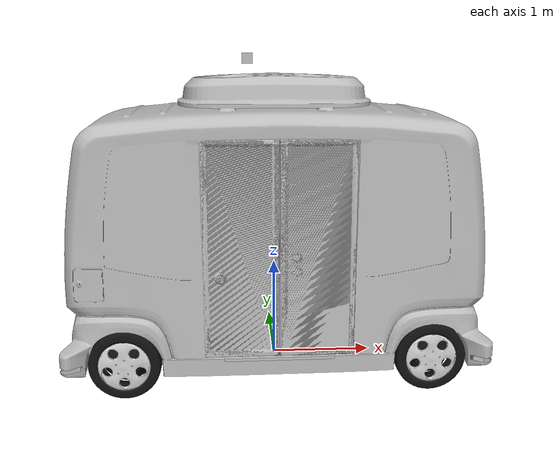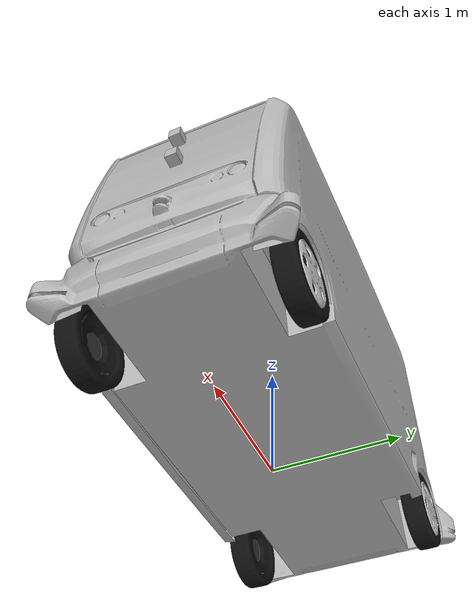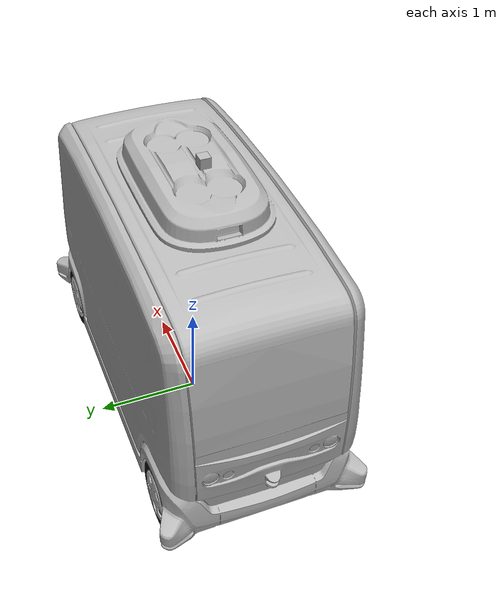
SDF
<?xml version="1.0"?>
<sdf version="1.6">

    <model name='gen0_model'>
        <!-- Define robot links -->
        <link name="base_link">
            <pose>0 0 0 0 0 0</pose>
            <visual name='visual'>
                <pose>0 0 0 0 0 -1.57079633</pose>
                <geometry>
                    <mesh>
                        <uri>../meshes/gen0_colored.dae</uri>
                        <scale>1 1 1</scale>
                    </mesh>
                </geometry>
            </visual>
            <collision name='collision_base_link'>
                <pose>0 0 0 0 0 -1.57079633</pose>
                <geometry>
                    <mesh>
                        <uri>../meshes/gen0_colored.dae</uri>
                        <scale>1 1 1</scale>
                    </mesh>
                </geometry>
            </collision>
        </link>

        <link name="main_mass">
            <pose>0 0 0 0 0 0</pose>
            <inertial>
                <mass>1703.239</mass> <!-- Mass value is incorrect as the intertias are wrong-->
                <inertia>
                    <ixx>347.195805</ixx>
                    <ixy>-11.4914985</ixy>
                    <ixz>18.5070628</ixz>
                    <iyy>2330.10026</iyy>
                    <iyz>3.97814264</iyz>
                    <izz>2529.41827</izz>
                </inertia>
            </inertial>
        </link>

        <link name="right_door_link_empty">
            <pose>0 0 0 0 0 0 </pose>
            <inertial>
                <mass>5.00</mass>
                <inertia>
                    <ixx>0.1</ixx>
                    <ixy>0.0</ixy>
                    <ixz>0.0</ixz>
                    <iyy>0.1</iyy>
                    <iyz>0.0</iyz>
                    <izz>0.1</izz>
                </inertia>
            </inertial>
        </link>

         <link name="right_door_link">
            <pose>0 0 0 0 0 -1.57079633</pose>
            <inertial>
                <mass>5.00</mass>
                <inertia>
                    <ixx>0.1</ixx>
                    <ixy>0.0</ixy>
                    <ixz>0.0</ixz>
                    <iyy>0.1</iyy>
                    <iyz>0.0</iyz>
                    <izz>0.1</izz>
                </inertia>
            </inertial>
            <visual name='right_door_visual'>
                <pose>0 0 0 0 0 0</pose>
                <geometry>
                    <mesh>
                        <uri>../meshes/gen0_right_door.dae</uri>
                        <scale>1 1 1</scale>
                    </mesh>
                </geometry>
            </visual>
        </link>

        <joint name="right_door_slide_forward" type="prismatic">
            <parent>base_link</parent>
            <child>right_door_link_empty</child>
            <axis>
                <xyz>0 -1 0</xyz>
                <limit>
                    <lower>0.0</lower>
                    <upper>0.1</upper>
                    <velocity>75.0</velocity>
                    <effort>500.0</effort>
                </limit>
                <dynamics>
                    <damping>5.0</damping>
                </dynamics>
            </axis>
        </joint>

        <joint name="right_door_slide_sideways" type="prismatic">
            <parent>right_door_link_empty</parent>
            <child>right_door_link</child>
            <axis>
                <xyz>0 1 0</xyz>
                <limit>
                    <lower>0.0</lower>
                    <upper>0.5</upper>
                    <velocity>10.5</velocity>
                    <effort>500.0</effort>
                </limit>
                <dynamics>
                    <damping>5.0</damping>
                </dynamics>
            </axis>
        </joint>

        <link name="left_door_link_empty">
            <pose>0 0 0 0 0 0 </pose>
            <inertial>
                <mass>5.00</mass>
                <inertia>
                    <ixx>0.1</ixx>
                    <ixy>0.0</ixy>
                    <ixz>0.0</ixz>
                    <iyy>0.1</iyy>
                    <iyz>0.0</iyz>
                    <izz>0.1</izz>
                </inertia>
            </inertial>
        </link>

         <link name="left_door_link">
            <pose>0 0 0 0 0 -1.57079633</pose>
            <inertial>
                <mass>5.00</mass>
                <inertia>
                    <ixx>0.1</ixx>
                    <ixy>0.0</ixy>
                    <ixz>0.0</ixz>
                    <iyy>0.1</iyy>
                    <iyz>0.0</iyz>
                    <izz>0.1</izz>
                </inertia>
            </inertial>
            <visual name='left_door_visual'>
                <pose>0 0 0 0 0 0</pose>
                <geometry>
                    <mesh>
                        <uri>../meshes/gen0_left_door.dae</uri>
                        <scale>1 1 1</scale>
                    </mesh>
                </geometry>
            </visual>
        </link>

        <joint name="left_door_slide_forward" type="prismatic">
            <parent>base_link</parent>
            <child>left_door_link_empty</child>
            <axis>
                <xyz>0 -1 0</xyz>
                <limit>
                    <lower>0.0</lower>
                    <upper>0.1</upper>
                    <velocity>50.5</velocity>
                    <effort>500.0</effort>
                </limit>
                <dynamics>
                    <damping>5.0</damping>
                </dynamics>
            </axis>
        </joint>

        <joint name="left_door_slide_sideways" type="prismatic">
            <parent>left_door_link_empty</parent>
            <child>left_door_link</child>
            <axis>
                <xyz>0 -1 0</xyz>
                <limit>
                    <lower>0.0</lower>
                    <upper>0.5</upper>
                    <velocity>10.5</velocity>
                    <effort>500.0</effort>
                </limit>
                <dynamics>
                    <damping>5.0</damping>
                </dynamics>
            </axis>
        </joint>

        <link name="ramp_link_empty">
            <pose>0 0 0 0 0 0 </pose>
            <inertial>
                <mass>5.00</mass>
                <inertia>
                    <ixx>0.1</ixx>
                    <ixy>0.0</ixy>
                    <ixz>0.0</ixz>
                    <iyy>0.1</iyy>
                    <iyz>0.0</iyz>
                    <izz>0.1</izz>
                </inertia>
            </inertial>
        </link>

        <link name="ramp_link">
            <pose>0 0.58 0.40 0 0 -1.57079633</pose>
            <inertial>
                <mass>5.00</mass>
                <inertia>
                    <ixx>0.1</ixx>
                    <ixy>0.0</ixy>
                    <ixz>0.0</ixz>
                    <iyy>0.1</iyy>
                    <iyz>0.0</iyz>
                    <izz>0.1</izz>
                </inertia>
            </inertial>
            <visual name='ramp_visual'>
                <pose>0.58 0 -0.40 0 0 0</pose>
                <geometry>
                    <mesh>
                        <uri>../meshes/gen0_ramp.dae</uri>
                        <scale>1 1 1</scale>
                    </mesh>
                </geometry>
            </visual>
        </link>

        <joint name="ramp_slide_forward" type="prismatic">
            <parent>base_link</parent>
            <child>ramp_link_empty</child>
            <axis>
                <xyz>0 -1 0</xyz>
                <limit>
                    <lower>0.0</lower>
                    <upper>1.48</upper>
                    <velocity>0.5</velocity>
                    <effort>500.0</effort>
                </limit>
                <dynamics>
                    <damping>25.0</damping>
                    <friction>0.0</friction>
                </dynamics>
            </axis>
        </joint>

        <joint name="ramp_slide_rotate" type="revolute">
            <parent>ramp_link_empty</parent>
            <child>ramp_link</child>
            <axis>
                <xyz>0 -1 0</xyz>
                <limit>
                    <lower>-0.245</lower>
                    <upper>0.0</upper>
                    <velocity>10.5</velocity>
                    <effort>500.0</effort>
                </limit>
                <dynamics>
                    <damping>15.0</damping>
                    <friction>0.0</friction>
                </dynamics>
            </axis>
        </joint>

        <link name="back_right_steering_link">
            <pose>-1.4 -0.7925 0.33 0 0 0</pose>
            <inertial>
                <mass>50.00</mass>
                <inertia>
                    <ixx>0.25</ixx>
                    <ixy>0</ixy>
                    <ixz>0</ixz>
                    <iyy>0.1354</iyy>
                    <iyz>0</iyz>
                    <izz>0.1354</izz>
                </inertia>
            </inertial>
            <visual name='visual_back_right_steering'>
                <pose>0 0 0 1.570796 0 0</pose>
                <geometry>
                    <cylinder>
                        <length>0.05</length>
                        <radius>0.1</radius>
                    </cylinder>
                </geometry>
                <material>
                    <ambient>0.2 0.2 0.2 1</ambient>
                    <diffuse>0.2 0.2 0.2 1</diffuse>
                    <specular>0.2 0.2 0.2 1</specular>
                </material>
            </visual>
            <collision name='collision_back_right_steering'>
                <pose>0 0 0 1.570796 0 0</pose>
                <geometry>
                    <cylinder>
                        <length>0.05</length>
                        <radius>0.1</radius>
                    </cylinder>
                </geometry>
            </collision>
        </link>

        <link name="back_right_wheel_link">
            <pose>-1.4 -0.7925 0.33 0 0 -1.570796</pose>
            <inertial>
                <mass>20.00</mass>
                <inertia>
                    <ixx>1.089</ixx>
                    <ixy>0</ixy>
                    <ixz>0</ixz>
                    <iyy>0.5985</iyy>
                    <iyz>0</iyz>
                    <izz>0.5985</izz>
                </inertia>
            </inertial>
            <visual name='visual_back_right_wheel'>
                <geometry>
                    <mesh>
                        <uri>../meshes/gen0_wheels.dae</uri>
                        <scale>1 1 1</scale>
                    </mesh>
                </geometry>
            </visual>
            <collision name='collision_back_right_wheel'>
                <pose>0 0 0 0 1.570796 0</pose>
                <geometry>
                    <cylinder>
                        <length>0.18</length>
                        <radius>0.33</radius>
                    </cylinder>
                </geometry>
                <surface>
                    <friction>
                        <ode>
                            <mu>10000000</mu>
                            <mu2>7000</mu2>
                        </ode>
                    </friction>
                    <bounce>
                        <restitution_coefficient>0.0</restitution_coefficient>
                    </bounce>
                    <contact>
                        <ode>
                            <soft_cfm>0.001</soft_cfm>
                            <soft_erp>0.5</soft_erp>
                            <kp>10000000</kp>
                            <kd>1</kd>
                        </ode>
                    </contact>
                </surface>
            </collision>

        </link>

        <link name="back_left_steering_link">
            <pose>-1.4 0.7925 0.33 0 0 0</pose>
            <inertial>
                <mass>50.00</mass>
                <inertia>
                    <ixx>0.25</ixx>
                    <ixy>0</ixy>
                    <ixz>0</ixz>
                    <iyy>0.1354</iyy>
                    <iyz>0</iyz>
                    <izz>0.1354</izz>
                </inertia>
            </inertial>
            <visual name='visual_back_left_steering'>
                <pose>0 0 0 1.570796 0 0</pose>
                <geometry>
                    <cylinder>
                        <length>0.05</length>
                        <radius>0.1</radius>
                    </cylinder>
                </geometry>
                <material>
                    <ambient>0.2 0.2 0.2 1</ambient>
                    <diffuse>0.2 0.2 0.2 1</diffuse>
                    <specular>0.2 0.2 0.2 1</specular>
                </material>
            </visual>
            <collision name='collision_back_left_steering'>
                <pose>0 0 0 1.570796 0 0</pose>
                <geometry>
                    <cylinder>
                        <length>0.05</length>
                        <radius>0.1</radius>
                    </cylinder>
                </geometry>
            </collision>
        </link>

        <link name="back_left_wheel_link">
            <pose>-1.4 0.7925 0.33 0 0 1.570796</pose>
            <inertial>
                <mass>20.00</mass>
                <inertia>
                    <ixx>1.089</ixx>
                    <ixy>0</ixy>
                    <ixz>0</ixz>
                    <iyy>0.5985</iyy>
                    <iyz>0</iyz>
                    <izz>0.5985</izz>
                </inertia>
            </inertial>
            <visual name='visual_back_left_wheel'>
                <geometry>
                    <mesh>
                        <uri>../meshes/gen0_wheels.dae</uri>
                        <scale>1 1 1</scale>
                    </mesh>
                </geometry>
            </visual>
            <collision name='collision_back_left_wheel'>
                <pose>0 0 0 0 1.570796 0</pose>
                <geometry>
                    <cylinder>
                        <length>0.18</length>
                        <radius>0.33</radius>
                    </cylinder>
                </geometry>
                <surface>
                    <friction>
                        <ode>
                            <mu>10000000</mu>
                            <mu2>7000</mu2>
                        </ode>
                    </friction>
                    <bounce>
                        <restitution_coefficient>0.0</restitution_coefficient>
                    </bounce>
                    <contact>
                        <ode>
                            <soft_cfm>0.001</soft_cfm>
                            <soft_erp>0.5</soft_erp>
                            <kp>10000000</kp>
                            <kd>1</kd>
                        </ode>
                    </contact>
                </surface>
            </collision>
        </link>

        <link name="front_right_steering_link">
            <pose>1.4 -0.7925 0.33 0 0 0</pose>
            <inertial>
                <mass>50.00</mass>
                <inertia>
                    <ixx>0.25</ixx>
                    <ixy>0</ixy>
                    <ixz>0</ixz>
                    <iyy>0.1354</iyy>
                    <iyz>0</iyz>
                    <izz>0.1354</izz>
                </inertia>
            </inertial>
            <visual name='visual_front_right_steering'>
                <pose>0 0 0 1.570796 0 0</pose>
                <geometry>
                    <cylinder>
                        <length>0.05</length>
                        <radius>0.1</radius>
                    </cylinder>
                </geometry>
                <material>
                    <ambient>0.2 0.2 0.2 1</ambient>
                    <diffuse>0.2 0.2 0.2 1</diffuse>
                    <specular>0.2 0.2 0.2 1</specular>
                </material>
            </visual>
            <collision name='collision_front_right_steering'>
                <pose>0 0 0 1.570796 0 0</pose>
                <geometry>
                    <cylinder>
                        <length>0.05</length>
                        <radius>0.1</radius>
                    </cylinder>
                </geometry>
            </collision>
        </link>

        <link name="front_right_wheel_link">
            <pose>1.4 -0.7925 0.33 0 0 -1.570796</pose>
            <inertial>
                <mass>20.00</mass>
                <inertia>
                    <ixx>1.089</ixx>
                    <ixy>0</ixy>
                    <ixz>0</ixz>
                    <iyy>0.5985</iyy>
                    <iyz>0</iyz>
                    <izz>0.5985</izz>
                </inertia>
            </inertial>
            <visual name='visual_front_right_wheel'>
                <geometry>
                    <mesh>
                        <uri>../meshes/gen0_wheels.dae</uri>
                        <scale>1 1 1</scale>
                    </mesh>
                </geometry>
            </visual>
            <collision name='collision_front_right_wheel'>
                <pose>0 0 0 0 1.570796 0</pose>
                <geometry>
                    <cylinder>
                        <length>0.18</length>
                        <radius>0.33</radius>
                    </cylinder>
                </geometry>
                <surface>
                    <friction>
                        <ode>
                            <mu>10000000</mu>
                            <mu2>7000</mu2>
                        </ode>
                    </friction>
                    <bounce>
                        <restitution_coefficient>0.0</restitution_coefficient>
                    </bounce>
                    <contact>
                        <ode>
                            <soft_cfm>0.001</soft_cfm>
                            <soft_erp>0.5</soft_erp>
                            <kp>10000000</kp>
                            <kd>1</kd>
                        </ode>
                    </contact>
                </surface>
            </collision>
        </link>

        <link name="front_left_steering_link">
            <pose>1.4 0.7925 0.33 0 0 0</pose>
            <inertial>
                <mass>50.00</mass>
                <inertia>
                    <ixx>0.25</ixx>
                    <ixy>0</ixy>
                    <ixz>0</ixz>
                    <iyy>0.1354</iyy>
                    <iyz>0</iyz>
                    <izz>0.1354</izz>
                </inertia>
            </inertial>
            <visual name='visual_front_left_steering'>
                <pose>0 0 0 1.570796 0 0</pose>
                <geometry>
                    <cylinder>
                        <length>0.05</length>
                        <radius>0.1</radius>
                    </cylinder>
                </geometry>
                <material>
                    <ambient>0.2 0.2 0.2 1</ambient>
                    <diffuse>0.2 0.2 0.2 1</diffuse>
                    <specular>0.2 0.2 0.2 1</specular>
                </material>
            </visual>
            <collision name='collision_front_left_steering'>
                <pose>0 0 0 1.570796 0 0</pose>
                <geometry>
                    <cylinder>
                        <length>0.05</length>
                        <radius>0.1</radius>
                    </cylinder>
                </geometry>
            </collision>
        </link>

        <link name="front_left_wheel_link">
            <pose>1.4 0.7925 0.33 0 0 1.570796</pose>
            <inertial>
                <mass>20.00</mass>
                <inertia>
                    <ixx>1.089</ixx>
                    <ixy>0</ixy>
                    <ixz>0</ixz>
                    <iyy>0.5985</iyy>
                    <iyz>0</iyz>
                    <izz>0.5985</izz>
                </inertia>
            </inertial>
            <visual name='visual_front_left_wheel'>
                <geometry>
                    <mesh>
                        <uri>../meshes/gen0_wheels.dae</uri>
                        <scale>1 1 1</scale>
                    </mesh>
                </geometry>
            </visual>
            <collision name='collision_front_left_wheel'>
                <pose>0 0 0 0 1.570796 0</pose>
                <geometry>
                    <cylinder>
                        <length>0.18</length>
                        <radius>0.33</radius>
                    </cylinder>
                </geometry>
                <surface>
                    <friction>
                        <ode>
                            <mu>10000000</mu>
                            <mu2>7000</mu2>
                        </ode>
                    </friction>
                    <bounce>
                        <restitution_coefficient>0.0</restitution_coefficient>
                    </bounce>
                    <contact>
                        <ode>
                            <soft_cfm>0.001</soft_cfm>
                            <soft_erp>0.5</soft_erp>
                            <kp>10000000</kp>
                            <kd>1</kd>
                        </ode>
                    </contact>
                </surface>
            </collision>
        </link>
        <link name="front_3d_lidar_link">
            <pose>1.9 0 1.9 0 0 0</pose>
            <inertial>
                <mass>0.1</mass>
                <inertia>
                    <ixx>0.000166667</ixx>
                    <iyy>0.000166667</iyy>
                    <izz>0.000166667</izz>
                </inertia>
            </inertial>
            <collision name="lidar_collision">
                <geometry>
                    <box>
                        <size>0.1 0.1 0.1</size>
                    </box>
                </geometry>
            </collision>
            <visual name="lidar_visual">
                <geometry>
                    <box>
                        <size>0.1 0.1 0.1</size>
                    </box>
                </geometry>
            </visual>

            <sensor name='front_3d_gpu_lidar' type='gpu_lidar'>
                <pose>0 0 0 0 0 0</pose>
                <topic>front3d/scan</topic>
                <gz:frame_id >front_3d_lidar_link</gz:frame_id >
                <update_rate>10</update_rate>
                <lidar>
                    <scan>
                        <horizontal>
                            <samples>1024</samples>
                            <min_angle>-1.5707</min_angle>
                            <max_angle>1.5707</max_angle>
                        </horizontal>
                        <vertical>
                            <samples>64</samples>
                            <min_angle>-0.3926991</min_angle>
                            <max_angle>0.3926991</max_angle>
                        </vertical>
                    </scan>
                    <range>
                        <min>0.5</min>
                        <max>170</max>
                        <resolution>0.02</resolution>
                    </range>
                </lidar>
                <visualize>true</visualize>
            </sensor>
        </link>
        <link name="front_camera_link">
            <pose>1.9 0 1.6 0 0 0</pose>
            <inertial>
                <mass>0.1</mass>
                <inertia>
                    <ixx>0.000166667</ixx>
                    <iyy>0.000166667</iyy>
                    <izz>0.000166667</izz>
                </inertia>
            </inertial>
            <collision name="camera_collision">
                <geometry>
                    <box>
                        <size>0.1 0.1 0.1</size>
                    </box>
                </geometry>
            </collision>
            <visual name="camera_visual">
                <geometry>
                    <box>
                        <size>0.1 0.1 0.1</size>
                    </box>
                </geometry>
            </visual>

            <sensor name="front_camera" type="camera">
                <pose>0 0 0 0 0 0</pose>
                <topic>camera/images</topic>

                <camera>
                    <horizontal_fov>1.047</horizontal_fov>

                    <image>
                        <width>900</width>
                        <height>700</height>
                        <format>R8G8B8</format>
                    </image>
                    <clip>
                        <near>0.1</near>
                        <far>100</far>
                    </clip>
                </camera>
                <update_rate>20</update_rate>
                 <always_on>1</always_on>
                <visualize>true</visualize>
            </sensor>
        </link>

        <link name="fr_2d_lidar_link">
            <pose>1.84 -0.85 0.33 0 0 0</pose>
            <inertial>
                <mass>0.1</mass>
                <inertia>
                    <ixx>0.000166667</ixx>
                    <iyy>0.000166667</iyy>
                    <izz>0.000166667</izz>
                </inertia>
            </inertial>
            <collision name="fr_2d_lidar_collision">
                <geometry>
                    <box>
                        <size>0.1 0.1 0.1</size>
                    </box>
                </geometry>
            </collision>
            <visual name="fr_2d_lidar_visual">
                <geometry>
                    <box>
                        <size>0.1 0.1 0.1</size>
                    </box>
                </geometry>
            </visual>

            <sensor name='fr_2d_gpu_lidar' type='gpu_lidar'>
                <pose>0 0 0 0 0 0</pose>
                <topic>fr/scan</topic>
                <gz:frame_id >fr_2d_lidar_link</gz:frame_id >
                <update_rate>20</update_rate>
                <lidar>
                    <scan>
                        <horizontal>
                            <samples>640</samples>
                            <min_angle>-2.356</min_angle>
                            <max_angle>1.5</max_angle>
                        </horizontal>
                        <vertical>
                            <samples>1</samples>
                            <min_angle>0.0</min_angle>
                            <max_angle>0.0</max_angle>
                        </vertical>
                    </scan>
                    <range>
                        <min>0.5</min>
                        <max>30</max>
                        <resolution>0.01</resolution>
                    </range>
                </lidar>
                <visualize>true</visualize>
            </sensor>
        </link>

        <link name="fl_2d_lidar_link">
            <pose>1.84 0.85 0.33 0 0 0</pose>
            <inertial>
                <mass>0.1</mass>
                <inertia>
                    <ixx>0.000166667</ixx>
                    <iyy>0.000166667</iyy>
                    <izz>0.000166667</izz>
                </inertia>
            </inertial>
            <collision name="fl_2d_lidar_collision">
                <geometry>
                    <box>
                        <size>0.1 0.1 0.1</size>
                    </box>
                </geometry>
            </collision>
            <visual name="fl_2d_lidar_visual">
                <geometry>
                    <box>
                        <size>0.1 0.1 0.1</size>
                    </box>
                </geometry>
            </visual>

            <sensor name='fl_2d_gpu_lidar' type='gpu_lidar'>
                <pose>0 0 0 0 0 0</pose>
                <topic>fl/scan</topic>
                <gz:frame_id >fl_2d_lidar_link</gz:frame_id >
                <update_rate>20</update_rate>
                <lidar>
                    <scan>
                        <horizontal>
                            <samples>640</samples>
                            <min_angle>-1.5</min_angle>
                            <max_angle>2.356</max_angle>
                        </horizontal>
                        <vertical>
                            <samples>1</samples>
                            <min_angle>0.0</min_angle>
                            <max_angle>0.0</max_angle>
                        </vertical>
                    </scan>
                    <range>
                        <min>0.5</min>
                        <max>30</max>
                        <resolution>0.01</resolution>
                    </range>
                </lidar>
                <visualize>true</visualize>
            </sensor>
        </link>

        <link name="imu_link">
            <pose>0 0 0 0 0 0</pose>
            <sensor name='imu_sensor' type='imu'>
                <always_on>1</always_on>
                <update_rate>10</update_rate>
                <visualize>true</visualize>
                <topic>imu</topic>
            </sensor>
        </link>

      <link name="gps_link">
        <pose>-0.25 0 3.0 0 0 0</pose>
        <inertial>
          <mass>0.1</mass>
          <inertia>
            <ixx>0.000166667</ixx>
            <iyy>0.000166667</iyy>
            <izz>0.000166667</izz>
          </inertia>
        </inertial>
        <collision name="collision">
          <geometry>
            <box>
              <size>0.1 0.1 0.1</size>
            </box>
          </geometry>
        </collision>
        <visual name="visual">
          <geometry>
            <box>
              <size>0.1 0.1 0.1</size>
            </box>
          </geometry>
        </visual>

        <sensor name="navsat" type="navsat">
          <always_on>1</always_on>
          <update_rate>10</update_rate>
          <topic>navsat</topic>
          <gz:frame_id >gps_link</gz:frame_id >
        </sensor>
      </link>

        <joint name="inertial_joint" type="fixed">
            <parent>base_link</parent>
            <child>main_mass</child>
        </joint>

        <joint name='front_3d_lidar_joint' type='fixed'>
            <parent>base_link</parent>
            <child>front_3d_lidar_link</child>
        </joint>
        <joint name='front_camera_joint' type='fixed'>
            <parent>base_link</parent>
            <child>front_camera_link</child>
        </joint>

        <joint name='fr_2d_lidar_joint' type='fixed'>
            <parent>base_link</parent>
            <child>fr_2d_lidar_link</child>
        </joint>

        <joint name='fl_2d_lidar_joint' type='fixed'>
            <parent>base_link</parent>
            <child>fl_2d_lidar_link</child>
        </joint>

        <joint name='imu_joint' type='fixed'>
            <parent>base_link</parent>
            <child>imu_link</child>
        </joint>

        <joint name='gps_joint' type='fixed'>
            <parent>base_link</parent>
            <child>gps_link</child>
        </joint>

        <joint name="back_right_steering_joint" type="revolute">
            <parent>base_link</parent>
            <child>back_right_steering_link</child>
            <axis>
                <xyz>0 0 1</xyz>
                <limit>
                    <lower>-0.31</lower>
                    <upper>0.31</upper>
                    <velocity>1000</velocity>
                    <effort>10000</effort>
                </limit>
            </axis>
        </joint>

        <joint name="back_right_wheel_joint" type="revolute">
            <parent>back_right_steering_link</parent>
            <child>back_right_wheel_link</child>
            <axis>
                <xyz>-1 0 0</xyz>
                <limit>
                    <lower>-1.79769e+308</lower>
                    <upper>1.79769e+308</upper>
                    <effort>10000</effort>
                    <velocity>5000</velocity>
                </limit>
                <dynamics>
                    <damping>0.01</damping>
                </dynamics>
            </axis>
        </joint>

        <joint name="back_left_steering_joint" type="revolute">
            <parent>base_link</parent>
            <child>back_left_steering_link</child>
            <axis>
                <xyz>0 0 1</xyz>
                <limit>
                    <lower>-0.31</lower>
                    <upper>0.31</upper>
                    <velocity>1000</velocity>
                    <effort>10000</effort>
                </limit>
            </axis>
        </joint>

        <joint name="back_left_wheel_joint" type="revolute">
            <parent>back_left_steering_link</parent>
            <child>back_left_wheel_link</child>
            <axis>
                <xyz>1 0 0</xyz>
                <limit>
                    <lower>-1.79769e+308</lower>
                    <upper>1.79769e+308</upper>
                    <effort>10000</effort>
                    <velocity>5000</velocity>
                </limit>
                <dynamics>
                    <damping>0.01</damping>
                </dynamics>
            </axis>
        </joint>

        <joint name="front_right_steering_joint" type="revolute">
            <parent>base_link</parent>
            <child>front_right_steering_link</child>
            <axis>
                <xyz>0 0 1</xyz>
                <limit>
                    <lower>-0.31</lower>
                    <upper>0.31</upper>
                    <velocity>1000</velocity>
                    <effort>10000</effort>
                </limit>
            </axis>
        </joint>

        <joint name="front_right_wheel_joint" type="revolute">
            <parent>front_right_steering_link</parent>
            <child>front_right_wheel_link</child>
            <axis>
                <xyz>-1 0 0</xyz>
                <limit>
                    <lower>-1.79769e+308</lower>
                    <upper>1.79769e+308</upper>
                    <effort>10000</effort>
                    <velocity>5000</velocity>
                </limit>
                <dynamics>
                    <damping>0.01</damping>
                </dynamics>
            </axis>
        </joint>

        <joint name="front_left_steering_joint" type="revolute">
            <parent>base_link</parent>
            <child>front_left_steering_link</child>
            <axis>
                <xyz>0 0 1</xyz>
                <limit>
                    <lower>-0.31</lower>
                    <upper>0.31</upper>
                    <velocity>1000</velocity>
                    <effort>10000</effort>
                </limit>
            </axis>
        </joint>

        <joint name="front_left_wheel_joint" type="revolute">
            <parent>front_left_steering_link</parent>
            <child>front_left_wheel_link</child>
            <axis>
                <xyz>1 0 0</xyz>
                <limit>
                    <lower>-1.79769e+308</lower>
                    <upper>1.79769e+308</upper>
                    <effort>10000</effort>
                    <velocity>5000</velocity>
                </limit>
                <dynamics>
                    <damping>0.01</damping>
                </dynamics>
            </axis>
        </joint>

        <!-- The ackermann plugin is only being used for speed control -->

        <plugin
            filename="gz-sim-joint-state-publisher-system"
            name="gz::sim::systems::JointStatePublisher">
        </plugin>

        <plugin
            filename="gz-sim-joint-position-controller-system"
            name="gz::sim::systems::JointPositionController">
            <joint_name>front_left_steering_joint</joint_name>
            <topic>/model/gen0_model/joint/front_left_steering_joint/cmd_pos</topic>
            <use_velocity_commands>true</use_velocity_commands>
        </plugin>

        <plugin
            filename="gz-sim-joint-position-controller-system"
            name="gz::sim::systems::JointPositionController">
            <joint_name>front_right_steering_joint</joint_name>
            <topic>/model/gen0_model/joint/front_right_steering_joint/cmd_pos</topic>
            <use_velocity_commands>true</use_velocity_commands>
        </plugin>

        <plugin
            filename="gz-sim-joint-position-controller-system"
            name="gz::sim::systems::JointPositionController">
            <joint_name>back_left_steering_joint</joint_name>
            <topic>/model/gen0_model/joint/back_left_steering_joint/cmd_pos</topic>
            <use_velocity_commands>true</use_velocity_commands>
        </plugin>

        <plugin
            filename="gz-sim-joint-position-controller-system"
            name="gz::sim::systems::JointPositionController">
            <joint_name>back_right_steering_joint</joint_name>
            <topic>/model/gen0_model/joint/back_right_steering_joint/cmd_pos</topic>
            <use_velocity_commands>true</use_velocity_commands>
        </plugin>

        <plugin
            filename="gz-sim-joint-controller-system"
            name="gz::sim::systems::JointController">
            <joint_name>back_left_wheel_joint</joint_name>
            <topic>/model/gen0_model/joint/back_left_wheel_joint/cmd_pos</topic>
        </plugin>

        <plugin
            filename="gz-sim-joint-controller-system"
            name="gz::sim::systems::JointController">
            <joint_name>back_right_wheel_joint</joint_name>
            <topic>/model/gen0_model/joint/back_right_wheel_joint/cmd_pos</topic>
        </plugin>

        <plugin
            filename="gz-sim-joint-controller-system"
            name="gz::sim::systems::JointController">
            <joint_name>right_door_slide_forward</joint_name>
            <topic>/model/gen0_model/joint/right_door_slide_forward/cmd_pos</topic>
        </plugin>

        <plugin
            filename="gz-sim-joint-controller-system"
            name="gz::sim::systems::JointController">
            <joint_name>right_door_slide_sideways</joint_name>
            <topic>/model/gen0_model/joint/right_door_slide_sideways/cmd_pos</topic>
        </plugin>

        <plugin
            filename="gz-sim-joint-controller-system"
            name="gz::sim::systems::JointController">
            <joint_name>left_door_slide_forward</joint_name>
            <topic>/model/gen0_model/joint/left_door_slide_forward/cmd_pos</topic>
        </plugin>

        <plugin
            filename="gz-sim-joint-controller-system"
            name="gz::sim::systems::JointController">
            <joint_name>left_door_slide_sideways</joint_name>
            <topic>/model/gen0_model/joint/left_door_slide_sideways/cmd_pos</topic>
        </plugin>

        <plugin
            filename="gz-sim-joint-controller-system"
            name="gz::sim::systems::JointController">
            <joint_name>ramp_slide_forward</joint_name>
            <topic>/model/gen0_model/joint/ramp_slide_forward/cmd_pos</topic>
        </plugin>

        <plugin
            filename="gz-sim-joint-controller-system"
            name="gz::sim::systems::JointController">
            <joint_name>ramp_slide_rotate</joint_name>
            <topic>/model/gen0_model/joint/ramp_slide_rotate/cmd_pos</topic>
        </plugin>

        <plugin
            filename="gz-sim-pose-publisher-system"
            name="gz::sim::systems::PosePublisher">
            <publish_link_pose>true</publish_link_pose>
            <use_pose_vector_msg>true</use_pose_vector_msg>
            <publish_nested_model_pose>true</publish_nested_model_pose>
            <static_publisher>false</static_publisher>
        </plugin>

    </model>

</sdf>
